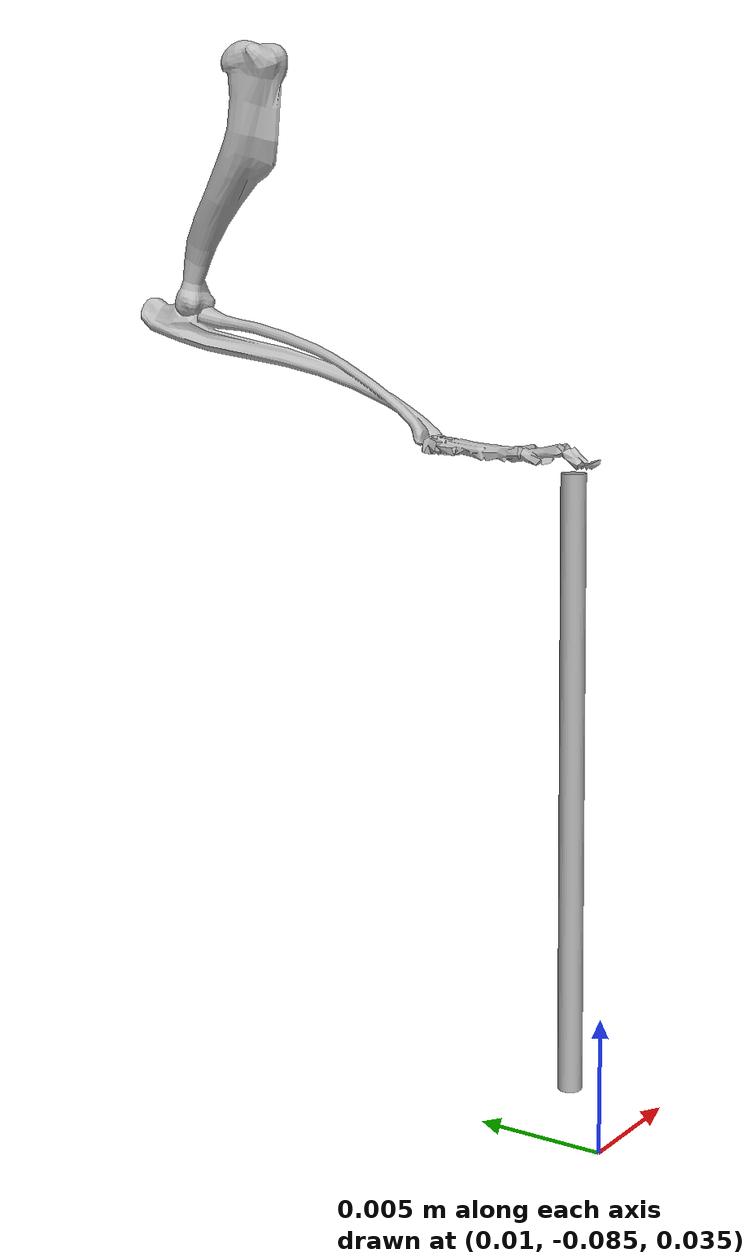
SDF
<?xml version="1.0" ?>
<sdf version="1.6">
  <model name="robobrain_mouse">
    <pose>0.0 0.0 0.05119812488555908 0.0 0.0 0.0</pose>
    <link name="humerus">
      <gravity>true</gravity>
      <self_collide>true</self_collide>
      <pose>0.010209999978542328 -0.06925000250339508 0.02394000068306923 1.4660766124725342 0.9948377013206482 1.1344640254974365</pose>
      <inertial>
        <mass>5.199999941396527e-05</mass>
        <inertia>
          <ixx>1.2712433772321674e-06</ixx>
          <ixy>0.0</ixy>
          <ixz>0.0</ixz>
          <iyy>1.3205350114731118e-05</iyy>
          <iyz>0.0</iyz>
          <izz>1.3603204934042878e-05</izz>
        </inertia>
        <pose>0.005032066721469164 -0.00032134982757270336 -2.9600225389003754e-05 4.8393488327747036e-08 2.931214737600385e-07 -3.616433730257995e-07</pose>
      </inertial>
      <visual name="VIS_humerus">
        <pose>-7.799826562404633e-08 9.639188647270203e-08 -7.2177499532699585e-09 3.395447123466511e-08 2.376813057480831e-07 -2.813370656440384e-07</pose>
        <geometry>
          <mesh>
            <uri>model://robobrain_mouse_with_joystick/meshes/visual/VIS_humerus.dae</uri>
            <scale>0.0014999998966231942 0.0014999998966231942 0.001500000013038516</scale>
          </mesh>
        </geometry>
      </visual>
    </link>

    <link name="humerus_helper">
      <gravity>true</gravity>
      <self_collide>true</self_collide>
      <pose>0.010209999978542328 -0.06925000250339508 0.02394000068306923 1.4660766124725342 0.9948377013206482 1.1344640254974365</pose>
      <inertial>
        <mass>9.999999747378752e-06</mass>
        <inertia>
          <ixx>1.0e-05</ixx>
          <ixy>0.0</ixy>
          <ixz>0.0</ixz>
          <iyy>1.0e-05</iyy>
          <iyz>0.0</iyz>
          <izz>1.0e-05</izz>
        </inertia>
      <pose>0.005032066721469164 -0.00032134982757270336 -2.9600225389003754e-05 4.8393488327747036e-08 2.931214737600385e-07 -3.616433730257995e-07</pose>
      </inertial>
    </link>

    <link name="radius">
      <gravity>true</gravity>
      <self_collide>true</self_collide>
      <pose>0.012647438611480986 -0.06404050612384916 0.015079417197930326 -0.06633332379216957 0.44390657649748255 -1.56014954069828</pose>
      <inertial>
        <mass>2.700000004551839e-05</mass>
        <inertia>
          <ixx>1.0198847348874551e-06</ixx>
          <ixy>0.0</ixy>
          <ixz>0.0</ixz>
          <iyy>2.106719693983905e-05</iyy>
          <iyz>0.0</iyz>
          <izz>2.0488319933065213e-05</izz>
        </inertia>
        <pose>0.005458447150886059 -3.1477538868784904e-05 -0.0004281606525182724 1.8891088870987005e-07 -8.122217565187384e-08 -3.649179802778235e-07</pose>
      </inertial>
      <visual name="VIS_radius">
        <pose>6.948539521545172e-09 4.924368113279343e-07 1.775333657860756e-08 4.984032671018213e-07 -8.147556229687325e-08 -7.900476930444711e-07</pose>
        <geometry>
          <mesh>
            <uri>model://robobrain_mouse_with_joystick/meshes/visual/VIS_radius.dae</uri>
            <scale>0.001500000013038516 0.0014999998966231942 0.001500000013038516</scale>
          </mesh>
        </geometry>
      </visual>
    </link>
    <link name="foot">
      <gravity>true</gravity>
      <self_collide>true</self_collide>
      <pose>0.012764389012832384 -0.07558950943071956 0.009830850598060603 1.57053142891783 0.09644763525526234 -1.5209226961654847</pose>
      <inertial>
        <mass>9.000000318337698e-06</mass>
        <inertia>
          <ixx>5.463311936182436e-07</ixx>
          <ixy>0.0</ixy>
          <ixz>0.0</ixz>
          <iyy>4.960554633726133e-06</iyy>
          <iyz>0.0</iyz>
          <izz>4.59005605080165e-06</izz>
        </inertia>
        <pose>0.0037877950817346573 -0.0002675749419722706 0.00010534156172070652 3.6688294358100393e-07 3.866241016226013e-08 2.624494470637728e-07</pose>
      </inertial>
      <visual name="VIS_foot">
        <pose>-2.4389009922742844e-08 -1.1721785995177925e-06 7.663402357138693e-09 8.931618253882334e-07 7.077481711803557e-08 5.101887836644892e-07</pose>
        <geometry>
          <mesh>
            <uri>model://robobrain_mouse_with_joystick/meshes/visual/VIS_foot.dae</uri>
            <scale>0.0014999998966231942 0.0014999998966231942 0.0014999998966231942</scale>
          </mesh>
        </geometry>
      </visual>
    </link>

    <link name="joystick">
      <gravity>true</gravity>
      <self_collide>true</self_collide>
      <pose>0.013086665115223425 -0.08203651204175601 0.008903921331343717 1.5985088335883262 -0.0592322332915342 0.013352217916964459</pose>
      <inertial>
        <mass>5.199999941396527e-05</mass>
        <inertia>
          <ixx>2.2342641386785544e-05</ixx>
          <ixy>0.0</ixy>
          <ixz>0.0</ixz>
          <iyy>2.2342641386785544e-05</iyy>
          <iyz>0.0</iyz>
          <izz>1.5624367222244473e-07</izz>
        </inertia>
        <pose>-2.8468086384236813e-05 -0.00808578822761774 2.787503763101995e-05 -1.5739771127700806 -0.008658049628138542 -0.003994327038526535</pose>
      </inertial>
      <visual name="VIS_joystick">
        <pose>-0.00029881263617426157 -0.012659442611038685 9.10137896426022e-05 -1.5739768743515015 -0.008658264763653278 -0.003994283266365528</pose>
        <geometry>
          <mesh>
            <uri>model://robobrain_mouse_with_joystick/meshes/visual/VIS_joystick.dae</uri>
            <scale>0.0004850113473366946 0.0004842984490096569 0.012190139852464199</scale>
          </mesh>
        </geometry>
      </visual>
    </link>
    <link name="joystick_helper">
      <gravity>true</gravity>
      <self_collide>true</self_collide>
      <pose>0.014552723951656505 -0.08131515263457567 -0.01604263005741325 1.5985088335883262 -0.0592322332915342 0.013352217916964457</pose>
      <inertial>
        <mass>9.999999747378752e-06</mass>
        <inertia>
          <ixx>1.0e-05</ixx>
          <ixy>0.0</ixy>
          <ixz>0.0</ixz>
          <iyy>1.0e-05</iyy>
          <iyz>0.0</iyz>
          <izz>1.0e-05</izz>
        </inertia>
        <pose>1.979060471057892e-09 2.867251168936491e-06 9.167706593871117e-09 0.0 -3.0779706561290254e-10 -3.616615451562666e-09</pose>
      </inertial>
    </link>

    <joint name="world_humerus" type="revolute">
      <parent>world</parent>
      <child>humerus_helper</child>
      <axis>
        <xyz>0.0 0.0 1.0</xyz>
        <limit>
          <lower>-1.8</lower>
          <upper>0.8</upper>
        </limit>
        <dynamics>
          <damping>0.0001</damping>
          <friction>0.0</friction>
          <spring_reference>0.0</spring_reference>
          <spring_stiffness>0.0</spring_stiffness>
        </dynamics>
      </axis>
      <physics>
        <ode>
          <cfm_damping>false</cfm_damping>
          <implicit_spring_damper>false</implicit_spring_damper>
          <cfm>0.0</cfm>
          <erp>0.20000000298023224</erp>
        </ode>
      </physics>
    </joint>

    <joint name="humerus_helper_joint" type="revolute">
      <parent>humerus_helper</parent>
      <child>humerus</child>
      <axis>
        <xyz>0.0 1.0 0.0</xyz>
        <limit>
          <lower>-1.8</lower>
          <upper>0.8</upper>
        </limit>
        <dynamics>
          <damping>0.0001</damping>
          <friction>0.0</friction>
          <spring_reference>0.0</spring_reference>
          <spring_stiffness>0.0</spring_stiffness>
        </dynamics>
      </axis>
      <physics>
        <ode>
          <cfm_damping>false</cfm_damping>
          <implicit_spring_damper>false</implicit_spring_damper>
          <cfm>0.0</cfm>
          <erp>0.20000000298023224</erp>
        </ode>
      </physics>
    </joint>

    <joint name="humerus_radius" type="revolute">
      <parent>humerus</parent>
      <child>radius</child>
      <axis>
        <xyz>0.0 1.0 0.0</xyz>
        <dynamics>
          <damping>0.00001</damping>
          <friction>0.0</friction>
          <spring_reference>0.0</spring_reference>
          <spring_stiffness>0.0</spring_stiffness>
        </dynamics>
        <limit>
          <lower>-1.0</lower>
          <upper>1.0459999942334164</upper>
        </limit>
      </axis>
      <physics>
        <ode>
          <cfm_damping>false</cfm_damping>
          <implicit_spring_damper>false</implicit_spring_damper>
          <cfm>0.0</cfm>
          <erp>0.20000000298023224</erp>
        </ode>
      </physics>
    </joint>

    <joint name="radius_foot" type="revolute">
      <parent>radius</parent>
      <child>foot</child>
      <axis>
        <xyz>0.0 0.0 1.0</xyz>
        <dynamics>
          <damping>0.000001</damping>
          <friction>0.0</friction>
          <spring_reference>0.0</spring_reference>
          <spring_stiffness>0.0</spring_stiffness>
        </dynamics>
        <limit>
          <lower>-0.8721999709659732</lower>
          <upper>0.6000000070036828</upper>
        </limit>
      </axis>
      <physics>
        <ode>
          <cfm_damping>false</cfm_damping>
          <implicit_spring_damper>false</implicit_spring_damper>
          <cfm>0.0</cfm>
          <erp>0.20000000298023224</erp>
        </ode>
      </physics>
    </joint>

    <joint name="foot_joystick" type="ball">
      <parent>foot</parent>
      <child>joystick</child>
      <axis>
        <xyz>1.0 0.0 0.0</xyz>
        <dynamics>
          <damping>0.0001</damping>
          <friction>0.0</friction>
          <spring_reference>0.0</spring_reference>
          <spring_stiffness>0.0</spring_stiffness>
        </dynamics>
      </axis>
      <physics>
        <ode>
          <cfm_damping>false</cfm_damping>
          <implicit_spring_damper>false</implicit_spring_damper>
          <cfm>0.0</cfm>
          <erp>0.20000000298023224</erp>
        </ode>
      </physics>
    </joint>

    <joint name="joystick_helper_joint" type="revolute">
      <parent>joystick</parent>
      <child>joystick_helper</child>
      <axis>
        <xyz>1.0 0.0 0.0</xyz>
        <dynamics>
          <damping>0.000010000000474974513</damping>
          <friction>0.0</friction>
          <spring_reference>0.0</spring_reference>
          <spring_stiffness>0.0</spring_stiffness>
        </dynamics>
        <limit>
          <lower>-1.5707963267948966</lower>
          <upper>1.5707963267948966</upper>
        </limit>
      </axis>
      <physics>
        <ode>
          <cfm_damping>false</cfm_damping>
          <implicit_spring_damper>false</implicit_spring_damper>
          <cfm>0.0</cfm>
          <erp>0.20000000298023224</erp>
        </ode>
      </physics>
    </joint>

    <joint name="joystick_world_joint" type="revolute">
      <parent>world</parent>
      <child>joystick_helper</child>
      <axis>
        <xyz>0.0 1.0 0.0</xyz>
        <dynamics>
          <damping>0.000010000000474974513</damping>
          <friction>0.0</friction>
          <spring_reference>0.0</spring_reference>
          <spring_stiffness>0.0</spring_stiffness>
        </dynamics>
      </axis>
      <physics>
        <ode>
          <cfm_damping>false</cfm_damping>
          <implicit_spring_damper>false</implicit_spring_damper>
          <cfm>0.0</cfm>
          <erp>0.20000000298023224</erp>
        </ode>
      </physics>
    </joint>

    <muscles>model://robobrain_mouse_with_joystick/muscles.osim</muscles>
    <plugin name="muscle_interface_plugin" filename="libgazebo_ros_muscle_interface.so"></plugin>

    <plugin filename="libgeneric_controller_plugin.so" name="robobrain_mouse_controller">

        <controller joint_name="world_humerus">
            <type>position</type>
            <pid>0 0 0</pid>
        </controller>
        <controller joint_name="humerus_helper_joint">
            <type>position</type>
            <pid>0 0 0</pid>
        </controller>
        <controller joint_name="humerus_radius">
            <type>position</type>
            <pid>0 0 0</pid>
        </controller>
        <controller joint_name="radius_foot">
            <type>position</type>
            <pid>0 0 0</pid>
        </controller>
        <controller joint_name="foot_joystick">
            <type>position</type>
            <pid>0 0 0</pid>
        </controller>
        <controller joint_name="joystick_helper_joint">
            <type>position</type>
            <pid>0 0 0</pid>
        </controller>
        <controller joint_name="joystick_world_joint">
            <type>position</type>
            <pid>0 0 0</pid>
        </controller>
    </plugin>

  </model>
</sdf>
